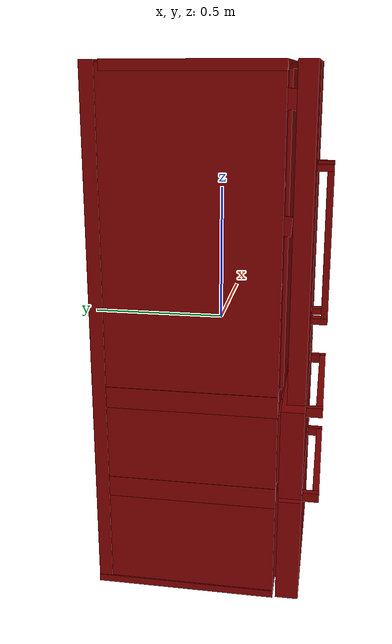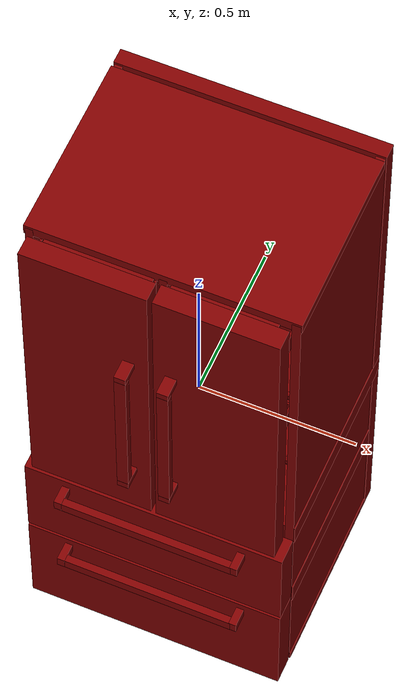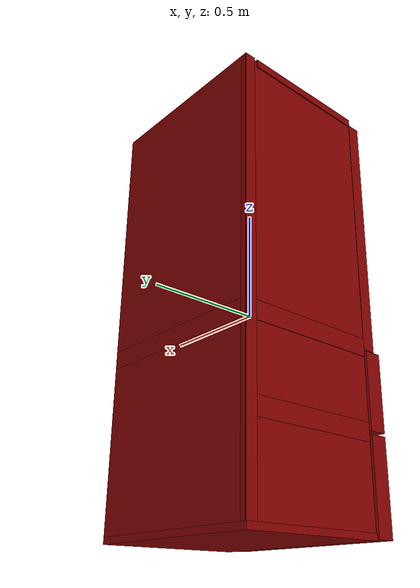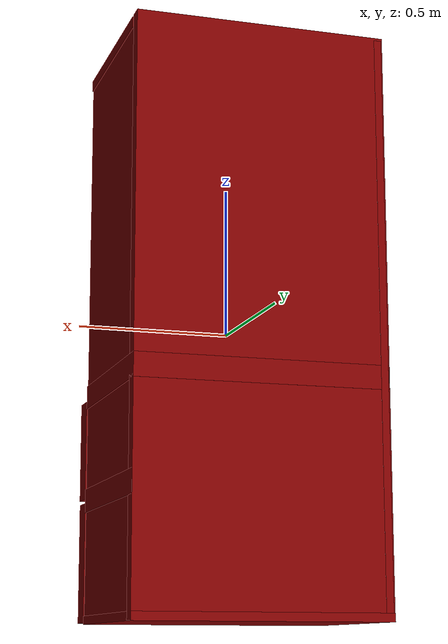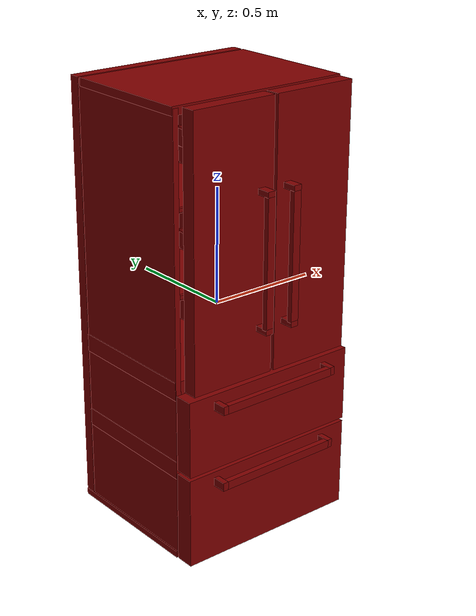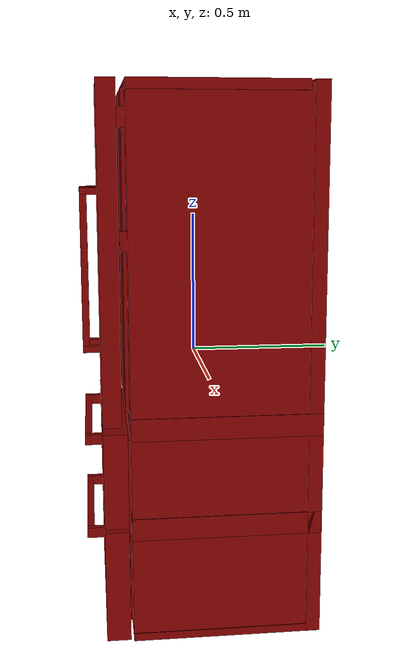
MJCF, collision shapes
<mujoco model="model">
  <compiler angle="radian"/>
  <asset>
    <mesh file="visuals/Body001.obj" name="Body001_vis"/>
    <mesh file="visuals/Body001_Clear.obj" name="Body001_Clear_vis"/>
    <mesh file="visuals/Door001.obj" name="Door001_vis"/>
    <mesh file="visuals/Door002.obj" name="Door002_vis"/>
    <mesh file="visuals/Drawer001.obj" name="Drawer001_vis"/>
    <mesh file="visuals/Drawer002.obj" name="Drawer002_vis"/>
    <texture file="visuals/T_BC001.png" name="Body001_material" type="2d"/>
    <material name="Body001_material" rgba="1 1 1 1.0" texture="Body001_material" shininess="0.141421377658844" specular="0.3103448502657381"/>
    <texture file="visuals/T_BC001.png" name="Body001_Clear_material" type="2d"/>
    <material name="Body001_Clear_material" rgba="1 1 1 0.6563574075698853" texture="Body001_Clear_material" shininess="0.141421377658844" specular="0.3103448502657381"/>
    <texture file="visuals/T_BC001.png" name="Door001_material" type="2d"/>
    <material name="Door001_material" rgba="1 1 1 1.0" texture="Door001_material" shininess="0.141421377658844" specular="0.3103448502657381"/>
    <texture file="visuals/T_BC001.png" name="Door002_material" type="2d"/>
    <material name="Door002_material" rgba="1 1 1 1.0" texture="Door002_material" shininess="0.141421377658844" specular="0.3103448502657381"/>
    <texture file="visuals/T_BC001.png" name="Drawer001_material" type="2d"/>
    <material name="Drawer001_material" rgba="1 1 1 1.0" texture="Drawer001_material" shininess="0.141421377658844" specular="0.3103448502657381"/>
    <texture file="visuals/T_BC001.png" name="Drawer002_material" type="2d"/>
    <material name="Drawer002_material" rgba="1 1 1 1.0" texture="Drawer002_material" shininess="0.141421377658844" specular="0.3103448502657381"/>
  </asset>
  <default>
    <default class="visual">
      <geom conaffinity="0" contype="0" group="1" type="mesh"/>
    </default>
    <default class="collision">
      <geom group="0" rgba="0.5 0 0 0.5"/>
    </default>
    <default class="spawn">
      <geom group="0" rgba="1 1 1 0.5" contype="0" conaffinity="0"/>
      <site group="0" rgba="1 1 1 0.5"/>
    </default>
    <default class="region">
      <geom group="1" conaffinity="0" contype="0" rgba="0 1 0 0"/>
    </default>
  </default>
  <worldbody>
    <body>
      <body name="object">
        <geom mesh="Body001_vis" type="mesh" solimp="0.998 0.998 0.001" solref="0.001 1" density="100" friction="0.95 0.3 0.1" class="visual" material="Body001_material"/>
        <geom class="collision" type="box" pos="0.000224428775254637 0.04214826226234436 0.9303771257400513" size="0.41617628931999207 0.2959442734718323 0.01783875748515129" quat="1.0 0.0 0.0 0.0"/>
        <geom class="collision" type="box" pos="-0.3992566764354706 0.07436013966798782 -0.003863856429234147" size="0.012237011454999447 0.32816049456596375 0.9433139562606812" quat="1.0 0.0 0.0 0.0"/>
        <geom class="collision" type="box" pos="0.3988100588321686 0.07397686690092087 -0.0038638559635728598" size="0.013861151412129402 0.32777708768844604 0.9433139562606812" quat="1.0 0.0 0.0 0.0"/>
        <geom class="collision" type="box" pos="0.0012362623820081353 0.07431245595216751 -0.1907988339662552" size="0.4151644706726074 0.3281084895133972 0.03876152262091637" quat="1.0 0.0 0.0 0.0"/>
        <geom class="collision" type="box" pos="0.0017966881860047579 0.07329514622688293 -0.5415087938308716" size="0.4146040380001068 0.32709118723869324 0.03876152262091637" quat="1.0 0.0 0.0 0.0"/>
        <geom class="collision" type="box" pos="0.0005395389744080603 0.3775724768638611 0.00016214139759540558" size="0.41586118936538696 0.02470250613987446 0.9473398327827454" quat="1.0 0.0 0.0 0.0"/>
        <geom class="collision" type="box" pos="-7.514654862461612e-05 -0.2397775501012802 0.19777925312519073" size="0.3962385952472687 0.007086105644702911 0.008046380244195461" quat="1.0 0.0 0.0 0.0"/>
        <geom class="collision" type="box" pos="-7.514654862461612e-05 0.25497981905937195 0.19777925312519073" size="0.3962337374687195 0.02028440497815609 0.008046377450227737" quat="1.0 0.0 0.0 0.0"/>
        <geom class="collision" type="box" pos="-7.514654862461612e-05 -0.2397775501012802 0.5473220348358154" size="0.3962382972240448 0.007086100522428751 0.008046374656260014" quat="1.0 0.0 0.0 0.0"/>
        <geom class="collision" type="box" pos="-7.514654862461612e-05 0.25497981905937195 0.5473220348358154" size="0.3962337374687195 0.020284390076994896 0.00804637186229229" quat="1.0 0.0 0.0 0.0"/>
        <geom class="collision" type="box" pos="-7.514654862461612e-05 0.07441635429859161 -0.9346054196357727" size="0.4164735972881317 0.32820916175842285 0.013645773753523827" quat="1.0 0.0 0.0 0.0"/>
        <geom class="collision" type="box" pos="0.0038310110103338957 0.07392902672290802 0.3806384801864624" size="0.012456019409000874 0.32772621512413025 0.5448160767555237" quat="1.0 0.0 0.0 0.0"/>
        <body name="Body001_Clear">
          <geom mesh="Body001_Clear_vis" type="mesh" solimp="0.998 0.998 0.001" solref="0.001 1" density="100" friction="0.95 0.3 0.1" class="visual" material="Body001_Clear_material"/>
          <geom class="collision" type="box" pos="-1.4901161193847656e-08 0.004687848500907421 0.5433336496353149" size="0.3865223526954651 0.25105834007263184 0.006889670621603727" quat="1.0 0.0 0.0 0.0"/>
          <geom class="collision" type="box" pos="-1.4901161193847656e-08 0.004687848500907421 0.1925102025270462" size="0.3865223526954651 0.25105834007263184 0.006889670621603727" quat="1.0 0.0 0.0 0.0"/>
        </body>
        <body name="Door001">
          <joint axis="0.0 0.0 -1.0" pos="-0.37534624338150024 -0.30961230397224426 0.38153231143951416" limited="true" name="Door001_joint" range="0.0 1.5707963267948966" type="hinge" damping="1" frictionloss="1" armature=".01" stiffness="0.05"/>
          <geom mesh="Door001_vis" type="mesh" solimp="0.998 0.998 0.001" solref="0.001 1" density="100" friction="0.95 0.3 0.1" class="visual" material="Door001_material"/>
          <geom class="collision" type="box" pos="-0.197335347533226 -0.3146684467792511 0.3813619017601013" size="0.193319633603096 0.03149494528770447 0.5673006176948547" quat="1.0 0.0 0.0 0.0"/>
          <geom class="collision" type="box" pos="-0.1874624788761139 -0.26123327016830444 0.3871716856956482" size="0.165060892701149 0.006539436057209969 0.5325689911842346" quat="1.0 0.0 0.0 0.0"/>
          <geom class="collision" type="box" pos="-0.2034875750541687 -0.21564851701259613 0.8286693692207336" size="0.17405283451080322 0.003400996793061495 0.0340593047440052" quat="0.9986742734909058 0.05147518590092659 -1.1429785662452561e-17 -9.811509770721305e-25"/>
          <geom class="collision" type="box" pos="-0.2034875750541687 -0.23215477168560028 0.797593891620636" size="0.17405283451080322 0.022372553125023842 0.003458016784861684" quat="1.0 0.0 0.0 0.0"/>
          <geom class="collision" type="box" pos="-0.37653809785842896 -0.25363796949386597 0.8297967314720154" size="0.03272543102502823 0.003400996560230851 0.043013185262680054" quat="0.47605499625205994 0.5228493809700012 -0.5216369032859802 0.47738364338874817"/>
          <geom class="collision" type="box" pos="-0.030863497406244278 -0.24170544743537903 0.8308865427970886" size="0.03272542729973793 0.003400996560230851 0.029008248820900917" quat="0.4760547876358032 0.5228495597839355 -0.5216367840766907 0.4773837924003601"/>
          <geom class="collision" type="box" pos="-0.2034875750541687 -0.21564851701259613 0.43134674429893494" size="0.17405283451080322 0.003400996793061495 0.0340593047440052" quat="0.9986742734909058 0.05147518590092659 -1.1429785662452561e-17 -9.811509770721305e-25"/>
          <geom class="collision" type="box" pos="-0.2034875750541687 -0.23215477168560028 0.4002712666988373" size="0.17405283451080322 0.022372543811798096 0.003458016784861684" quat="1.0 0.0 0.0 0.0"/>
          <geom class="collision" type="box" pos="-0.3765566945075989 -0.24637258052825928 0.4331376850605011" size="0.03272542729973793 0.003400996560230851 0.03316066041588783" quat="0.4760543406009674 0.5228499174118042 -0.5216363072395325 0.4773842990398407"/>
          <geom class="collision" type="box" pos="-0.0308820977807045 -0.23444005846977234 0.43422749638557434" size="0.03272542357444763 0.003400996793061495 0.02236367203295231" quat="0.47605472803115845 0.5228496789932251 -0.5216366052627563 0.47738391160964966"/>
          <geom class="collision" type="box" pos="-0.06463170051574707 -0.39542877674102783 0.30248695611953735" size="0.017848199233412743 0.012078516185283661 0.273135244846344" quat="1.0 0.0 0.0 0.0"/>
          <geom class="collision" type="box" pos="-0.06463170051574707 -0.3747059404850006 0.5866884589195251" size="0.017848199233412743 0.03267950937151909 0.012078518979251385" quat="1.0 0.0 0.0 0.0"/>
          <geom class="collision" type="box" pos="-0.06463170051574707 -0.37649020552635193 0.02285877801477909" size="0.017848199233412743 0.0312206894159317 0.012078518979251385" quat="1.0 0.0 0.0 0.0"/>
        </body>
        <body name="Door002">
          <joint axis="0.0 0.0 1.0" pos="0.3753504157066345 -0.3096121847629547 0.38152801990509033" limited="true" name="Door002_joint" range="0.0 1.5707963267948966" type="hinge" damping="1" frictionloss="1" armature=".01" stiffness="0.05"/>
          <geom mesh="Door002_vis" type="mesh" solimp="0.998 0.998 0.001" solref="0.001 1" density="100" friction="0.95 0.3 0.1" class="visual" material="Door002_material"/>
          <geom class="collision" type="box" pos="0.20094357430934906 -0.31452614068984985 0.38135388493537903" size="0.18959581851959229 0.0320538729429245 0.5675516724586487" quat="1.0 0.0 0.0 0.0"/>
          <geom class="collision" type="box" pos="0.1903121918439865 -0.26123327016830444 0.3871716856956482" size="0.1607256680727005 0.006539364345371723 0.5325640439987183" quat="1.0 0.0 0.0 0.0"/>
          <geom class="collision" type="box" pos="0.2095467448234558 -0.21564851701259613 0.8286693692207336" size="0.16922004520893097 0.003400996793061495 0.0340593047440052" quat="0.9986742734909058 0.05147518590092659 -1.1429785662452561e-17 -9.811509770721305e-25"/>
          <geom class="collision" type="box" pos="0.2095467448234558 -0.23215477168560028 0.797593891620636" size="0.16922004520893097 0.02237251214683056 0.003458016784861684" quat="1.0 0.0 0.0 0.0"/>
          <geom class="collision" type="box" pos="0.04130066558718681 -0.24258355796337128 0.8308063745498657" size="0.03272542729973793 0.003400996560230851 0.029008248820900917" quat="0.4760547876358032 0.5228495597839355 -0.5216367840766907 0.4773837924003601"/>
          <geom class="collision" type="box" pos="0.3771306276321411 -0.2527598440647125 0.8298768997192383" size="0.03272543102502823 0.003400996560230851 0.043013185262680054" quat="0.47605499625205994 0.5228493809700012 -0.5216369032859802 0.47738364338874817"/>
          <geom class="collision" type="box" pos="0.2095467448234558 -0.21564851701259613 0.4360523819923401" size="0.16922004520893097 0.003400996793061495 0.0340593047440052" quat="0.9986742734909058 0.05147518590092659 -1.1429785662452561e-17 -9.811509770721305e-25"/>
          <geom class="collision" type="box" pos="0.2095467448234558 -0.23215477168560028 0.40497690439224243" size="0.16922004520893097 0.022372502833604813 0.003458016784861684" quat="1.0 0.0 0.0 0.0"/>
          <geom class="collision" type="box" pos="0.04128206521272659 -0.2353181689977646 0.4388529658317566" size="0.03272542357444763 0.003400996793061495 0.02236367203295231" quat="0.47605472803115845 0.5228496789932251 -0.5216366052627563 0.47738391160964966"/>
          <geom class="collision" type="box" pos="0.37786316871643066 -0.24549447000026703 0.43792349100112915" size="0.03272542729973793 0.003400996560230851 0.03316066041588783" quat="0.4760543406009674 0.5228499174118042 -0.5216363072395325 0.4773842990398407"/>
          <geom class="collision" type="box" pos="0.06506678462028503 -0.39542877674102783 0.30248695611953735" size="0.017848199233412743 0.012078516185283661 0.273135244846344" quat="1.0 0.0 0.0 0.0"/>
          <geom class="collision" type="box" pos="0.06506678462028503 -0.3747059404850006 0.5866884589195251" size="0.017848199233412743 0.03267950937151909 0.012078518979251385" quat="1.0 0.0 0.0 0.0"/>
          <geom class="collision" type="box" pos="0.06506678462028503 -0.37649020552635193 0.02285877801477909" size="0.017848199233412743 0.0312206894159317 0.012078518979251385" quat="1.0 0.0 0.0 0.0"/>
        </body>
        <body name="Drawer001">
          <joint axis="0.0 -1.0 0.0" pos="3.430740980547853e-05 -0.07888904958963394 -0.3691798448562622" limited="true" name="Drawer001_joint" range="0.0 0.3" type="slide" damping="1" frictionloss="1" armature=".01" stiffness="0.05"/>
          <geom mesh="Drawer001_vis" type="mesh" solimp="0.998 0.998 0.001" solref="0.001 1" density="100" friction="0.95 0.3 0.1" class="visual" material="Drawer001_material"/>
          <geom class="collision" type="box" pos="-0.00028591297450475395 -0.3054739534854889 -0.3685452342033386" size="0.4154416620731354 0.041268203407526016 0.1657266914844513" quat="1.0 0.0 0.0 0.0"/>
          <geom class="collision" type="box" pos="0.00012974097626283765 0.24329261481761932 -0.3638452887535095" size="0.37471258640289307 0.00699428329244256 0.12750238180160522" quat="1.0 0.0 0.0 0.0"/>
          <geom class="collision" type="box" pos="0.00012974097626283765 -0.007458427455276251 -0.48587554693222046" size="0.37471258640289307 0.25812190771102905 0.006994354072958231" quat="1.0 0.0 0.0 0.0"/>
          <geom class="collision" type="box" pos="-0.3601420521736145 -0.009482000023126602 -0.36431825160980225" size="0.015929674729704857 0.25812220573425293 0.12944869697093964" quat="1.0 0.0 0.0 0.0"/>
          <geom class="collision" type="box" pos="0.3595070242881775 -0.00742823863402009 -0.36313462257385254" size="0.014212624169886112 0.2581222951412201 0.12944874167442322" quat="1.0 0.0 0.0 0.0"/>
          <geom class="collision" type="box" pos="0.003308311104774475 -0.39440271258354187 -0.2526620030403137" size="0.273135244846344 0.012078536674380302 0.017848221585154533" quat="1.0 0.0 0.0 0.0"/>
          <geom class="collision" type="box" pos="0.2844117283821106 -0.37367987632751465 -0.2515084147453308" size="0.012078517116606236 0.03267950937151909 0.017848201096057892" quat="1.0 0.0 0.0 0.0"/>
          <geom class="collision" type="box" pos="-0.2820283770561218 -0.37546414136886597 -0.25203949213027954" size="0.012078517116606236 0.0312206894159317 0.017848201096057892" quat="1.0 0.0 0.0 0.0"/>
        </body>
        <body name="Drawer002">
          <joint axis="0.0 -1.0 0.0" pos="3.4309752663830295e-05 -0.07888904958963394 -0.7456810474395752" limited="true" name="Drawer002_joint" range="0.0 0.3" type="slide" damping="1" frictionloss="1" armature=".01" stiffness="0.05"/>
          <geom mesh="Drawer002_vis" type="mesh" solimp="0.998 0.998 0.001" solref="0.001 1" density="100" friction="0.95 0.3 0.1" class="visual" material="Drawer002_material"/>
          <geom class="collision" type="box" pos="-0.0011195787228643894 -0.3054739534854889 -0.7458001375198364" size="0.41535788774490356 0.041268203407526016 0.19748368859291077" quat="1.0 0.0 0.0 0.0"/>
          <geom class="collision" type="box" pos="0.00012974097626283765 0.24329261481761932 -0.7304828763008118" size="0.37471258640289307 0.0069942898117005825 0.14864230155944824" quat="1.0 0.0 0.0 0.0"/>
          <geom class="collision" type="box" pos="0.00012974097626283765 -0.007458420470356941 -0.881013035774231" size="0.37471258640289307 0.2581223249435425 0.006994361523538828" quat="1.0 0.0 0.0 0.0"/>
          <geom class="collision" type="box" pos="-0.35984522104263306 -0.007338907103985548 -0.7329224944114685" size="0.01592968963086605 0.2581225633621216 0.15058861672878265" quat="1.0 0.0 0.0 0.0"/>
          <geom class="collision" type="box" pos="0.36337530612945557 -0.0025170431472361088 -0.7313796281814575" size="0.01421264000236988 0.25812265276908875 0.15058866143226624" quat="1.0 0.0 0.0 0.0"/>
          <geom class="collision" type="box" pos="0.0033083101734519005 -0.39476314187049866 -0.5915443897247314" size="0.273135244846344 0.012078536674380302 0.017848221585154533" quat="1.0 0.0 0.0 0.0"/>
          <geom class="collision" type="box" pos="0.2844117283821106 -0.37404027581214905 -0.5903908014297485" size="0.012078517116606236 0.03267950937151909 0.017848201096057892" quat="1.0 0.0 0.0 0.0"/>
          <geom class="collision" type="box" pos="-0.2820283770561218 -0.37582454085350037 -0.5918118357658386" size="0.012078517116606236 0.0312206894159317 0.017848201096057892" quat="1.0 0.0 0.0 0.0"/>
        </body>
        <geom class="region" name="reg_main" type="box" pos="0.0 0.028792425990104675 2.9802322387695312e-08" size="0.4165242910385132 0.3759693503379822 0.9490001201629639"/>
      </body>
    </body>
  </worldbody>
  <actuator>
    <motor name="Door001_joint_actuator" joint="Door001_joint" gear="50"/>
    <motor name="Door002_joint_actuator" joint="Door002_joint" gear="50"/>
    <motor name="Drawer001_joint_actuator" joint="Drawer001_joint" gear="50"/>
    <motor name="Drawer002_joint_actuator" joint="Drawer002_joint" gear="50"/>
  </actuator>
</mujoco>
